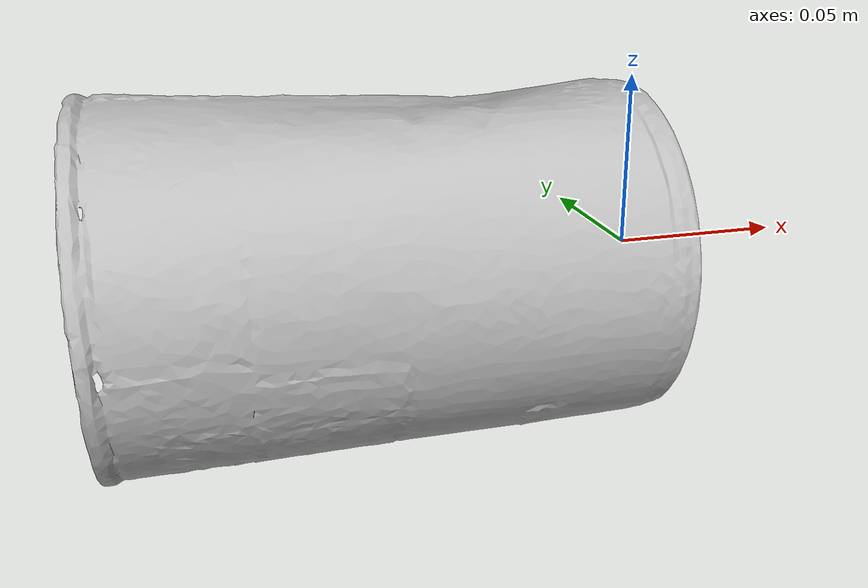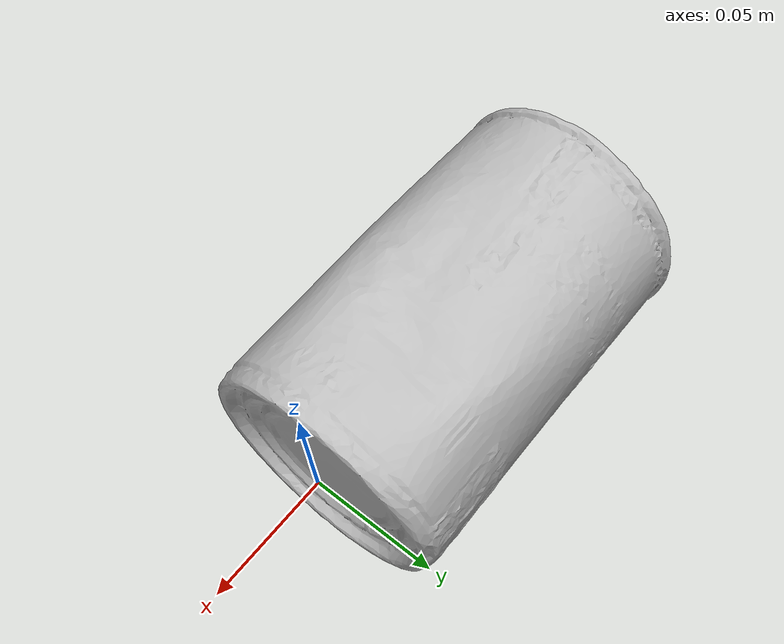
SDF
<?xml version='1.0'?>
<sdf version="1.4">
  <model name="tomato_soup">
    <pose>0 0 0  0 0 1.57</pose>
    <static>0</static>
    <link name="body">
      <inertial>
          <mass>0.349</mass>
          <inertia>
            <ixx>0.000423</ixx>
            <ixy>0.000000</ixy>
            <ixz>0.000000</ixz>
            <iyy>0.000423</iyy>
            <iyz>0.000000</iyz>
            <izz>0.000253</izz>
          </inertia>
      </inertial>
      <collision name="collision">
        <geometry>
          <mesh>
			  <uri>model://tomatosoup/meshes/tomato.obj</uri>
			  <scale>0.15 0.15 0.15</scale>
          </mesh>
        </geometry>
        <surface>
            <friction>
              <ode>
                <mu>30.0</mu>
                <mu2>30.0</mu2>
              </ode>
            </friction>
            <contact>
              <ode>
                <kp>1000000.0</kp>
                <kd>100.0</kd>
                <max_vel>1.0</max_vel>
                <min_depth>0.002</min_depth>
              </ode>
            </contact>
        </surface>
      </collision>
      <visual name="visual">
        <geometry>
          <mesh>
			  <uri>model://tomatosoup/meshes/tomato.obj</uri>
			  <scale>0.15 0.15 0.15</scale>
          </mesh>
        </geometry>
      </visual>
      <velocity_decay>
        <linear>0.000000</linear>
        <angular>0.000000</angular>
      </velocity_decay>
      <self_collide>0</self_collide>
      <kinematic>0</kinematic>
      <gravity>1</gravity>
    </link>
  </model>
</sdf>
